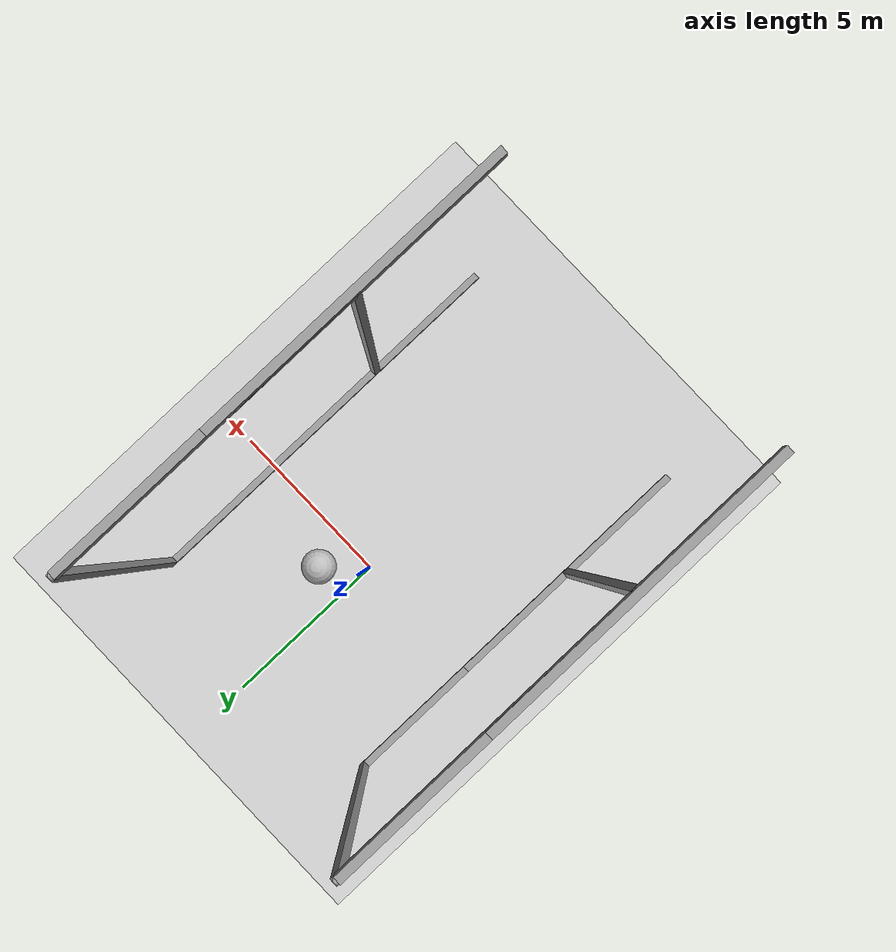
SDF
<?xml version="1.0" ?>
<sdf version="1.5">
<world name="default">
  <include>
    <uri>model://ground_plane</uri>
  </include>
  <include>
    <uri>model://sun</uri>
  </include>

  <!-- Support Columns -->
  <!-- Bottom Corners -->
  <model name="column1">
    <static>true</static>
    <link name="link">
      <collision name="collision">
        <geometry>
          <box>
            <size>0.2 0.2 8</size>
          </box>
        </geometry>
      </collision>
      <visual name="visual">
        <geometry>
          <box>
            <size>0.2 0.2 8</size>
          </box>
        </geometry>
        <material>
          <script>
            <uri>file://media/materials/scripts/gazebo.material</uri>
            <name>Gazebo/Grey</name>
          </script>
        </material>
      </visual>
    </link>
    <pose>4 0 0 1.5708 0 0</pose>
  </model>

  <model name="column2">
    <static>true</static>
    <link name="link">
      <collision name="collision">
        <geometry>
          <box>
            <size>0.2 0.2 8</size>
          </box>
        </geometry>
      </collision>
      <visual name="visual">
        <geometry>
          <box>
            <size>0.2 0.2 8</size>
          </box>
        </geometry>
        <material>
          <script>
            <uri>file://media/materials/scripts/gazebo.material</uri>
            <name>Gazebo/Grey</name>
          </script>
        </material>
      </visual>
    </link>
    <pose>-4 0 0 1.5708 0 0</pose>
  </model>

  <model name="column3">
    <static>true</static>
    <link name="link">
      <collision name="collision">
        <geometry>
          <box>
            <size>0.2 0.2 8</size>
          </box>
        </geometry>
      </collision>
      <visual name="visual">
        <geometry>
          <box>
            <size>0.2 0.2 8</size>
          </box>
        </geometry>
        <material>
          <script>
            <uri>file://media/materials/scripts/gazebo.material</uri>
            <name>Gazebo/Grey</name>
          </script>
        </material>
      </visual>
    </link>
    <pose>4 -4 0 1.5708 0 0</pose>
  </model>

  <model name="column4">
    <static>true</static>
    <link name="link">
      <collision name="collision">
        <geometry>
          <box>
            <size>0.2 0.2 8</size>
          </box>
        </geometry>
      </collision>
      <visual name="visual">
        <geometry>
          <box>
            <size>0.2 0.2 8</size>
          </box>
        </geometry>
        <material>
          <script>
            <uri>file://media/materials/scripts/gazebo.material</uri>
            <name>Gazebo/Grey</name>
          </script>
        </material>
      </visual>
    </link>
    <pose>-4 -4 0 1.5708 0 0</pose>
  </model>

  <!-- Top Corners -->
  <model name="column5">
    <static>true</static>
    <link name="link">
      <collision name="collision">
        <geometry>
          <box>
            <size>0.2 0.2 8</size>
          </box>
        </geometry>
      </collision>
      <visual name="visual">
        <geometry>
          <box>
            <size>0.2 0.2 8</size>
          </box>
        </geometry>
        <material>
          <script>
            <uri>file://media/materials/scripts/gazebo.material</uri>
            <name>Gazebo/Grey</name>
          </script>
        </material>
      </visual>
    </link>
    <pose>4 0 8 1.5708 0 0</pose>
  </model>

  <model name="column6">
    <static>true</static>
    <link name="link">
      <collision name="collision">
        <geometry>
          <box>
            <size>0.2 0.2 8</size>
          </box>
        </geometry>
      </collision>
      <visual name="visual">
        <geometry>
          <box>
            <size>0.2 0.2 8</size>
          </box>
        </geometry>
        <material>
          <script>
            <uri>file://media/materials/scripts/gazebo.material</uri>
            <name>Gazebo/Grey</name>
          </script>
        </material>
      </visual>
    </link>
    <pose>-4 0 8 1.5708 0 0</pose>
  </model>

  <model name="column7">
    <static>true</static>
    <link name="link">
      <collision name="collision">
        <geometry>
          <box>
            <size>0.2 0.2 8</size>
          </box>
        </geometry>
      </collision>
      <visual name="visual">
        <geometry>
          <box>
            <size>0.2 0.2 8</size>
          </box>
        </geometry>
        <material>
          <script>
            <uri>file://media/materials/scripts/gazebo.material</uri>
            <name>Gazebo/Grey</name>
          </script>
        </material>
      </visual>
    </link>
    <pose>4 -4 8 1.5708 0 0</pose>
  </model>

  <model name="column8">
    <static>true</static>
    <link name="link">
      <collision name="collision">
        <geometry>
          <box>
            <size>0.2 0.2 8</size>
          </box>
        </geometry>
      </collision>
      <visual name="visual">
        <geometry>
          <box>
            <size>0.2 0.2 8</size>
          </box>
        </geometry>
        <material>
          <script>
            <uri>file://media/materials/scripts/gazebo.material</uri>
            <name>Gazebo/Grey</name>
          </script>
        </material>
      </visual>
    </link>
    <pose>-4 -4 8 1.5708 0 0</pose>
  </model>

  <!-- Middle Corners -->
  <model name="column9">
    <static>true</static>
    <link name="link">
      <collision name="collision">
        <geometry>
          <box>
            <size>0.2 0.2 8</size>
          </box>
        </geometry>
      </collision>
      <visual name="visual">
        <geometry>
          <box>
            <size>0.2 0.2 8</size>
          </box>
        </geometry>
        <material>
          <script>
            <uri>file://media/materials/scripts/gazebo.material</uri>
            <name>Gazebo/Grey</name>
          </script>
        </material>
      </visual>
    </link>
    <pose>4 4 4 0 0 0</pose>
  </model>

  <model name="column10">
    <static>true</static>
    <link name="link">
      <collision name="collision">
        <geometry>
          <box>
            <size>0.2 0.2 8</size>
          </box>
        </geometry>
      </collision>
      <visual name="visual">
        <geometry>
          <box>
            <size>0.2 0.2 8</size>
          </box>
        </geometry>
        <material>
          <script>
            <uri>file://media/materials/scripts/gazebo.material</uri>
            <name>Gazebo/Grey</name>
          </script>
        </material>
      </visual>
    </link>
    <pose>-4 4 4 0 0 0</pose>
  </model>

  <model name="column11">
    <static>true</static>
    <link name="link">
      <collision name="collision">
        <geometry>
          <box>
            <size>0.2 0.2 8</size>
          </box>
        </geometry>
      </collision>
      <visual name="visual">
        <geometry>
          <box>
            <size>0.2 0.2 8</size>
          </box>
        </geometry>
        <material>
          <script>
            <uri>file://media/materials/scripts/gazebo.material</uri>
            <name>Gazebo/Grey</name>
          </script>
        </material>
      </visual>
    </link>
    <pose>4 -4 4 0 0 0</pose>
  </model>

  <model name="column12">
    <static>true</static>
    <link name="link">
      <collision name="collision">
        <geometry>
          <box>
            <size>0.2 0.2 8</size>
          </box>
        </geometry>
      </collision>
      <visual name="visual">
        <geometry>
          <box>
            <size>0.2 0.2 8</size>
          </box>
        </geometry>
        <material>
          <script>
            <uri>file://media/materials/scripts/gazebo.material</uri>
            <name>Gazebo/Grey</name>
          </script>
        </material>
      </visual>
    </link>
    <pose>-4 -4 4 0 0 0</pose>
  </model>

  <!-- Fixed Points -->
  <model name="fixed_point1">
    <static>true</static>
    <link name="link">
      <collision name="collision">
        <geometry>
          <sphere>
            <radius>0.1</radius>
          </sphere>
        </geometry>
      </collision>
      <visual name="visual">
        <geometry>
          <sphere>
            <radius>0.1</radius>
          </sphere>
        </geometry>
      </visual>
    </link>
    <pose>4 4 8 0 0 0</pose>
  </model>

  <model name="fixed_point2">
    <static>true</static>
    <link name="link">
      <collision name="collision">
        <geometry>
          <sphere>
            <radius>0.1</radius>
          </sphere>
        </geometry>
      </collision>
      <visual name="visual">
        <geometry>
          <sphere>
            <radius>0.1</radius>
          </sphere>
        </geometry>
      </visual>
    </link>
    <pose>-4 4 8 0 0 0</pose>
  </model>

  <model name="fixed_point3">
    <static>true</static>
    <link name="link">
      <collision name="collision">
        <geometry>
          <sphere>
            <radius>0.1</radius>
          </sphere>
        </geometry>
      </collision>
      <visual name="visual">
        <geometry>
          <sphere>
            <radius>0.1</radius>
          </sphere>
        </geometry>
      </visual>
    </link>
    <pose>4 -4 8 0 0 0</pose>
  </model>

  <model name="fixed_point4">
    <static>true</static>
    <link name="link">
      <collision name="collision">
        <geometry>
          <sphere>
            <radius>0.1</radius>
          </sphere>
        </geometry>
      </collision>
      <visual name="visual">
        <geometry>
          <sphere>
            <radius>0.1</radius>
          </sphere>
        </geometry>
      </visual>
    </link>
    <pose>-4 -4 8 0 0 0</pose>
  </model>

  <model name="fixed_point5">
    <static>true</static>
    <link name="link">
      <collision name="collision">
        <geometry>
          <sphere>
            <radius>0.1</radius>
          </sphere>
        </geometry>
      </collision>
      <visual name="visual">
        <geometry>
          <sphere>
            <radius>0.1</radius>
          </sphere>
        </geometry>
      </visual>
    </link>
    <pose>4 4 0 0 0 0</pose>
  </model>

  <model name="fixed_point6">
    <static>true</static>
    <link name="link">
      <collision name="collision">
        <geometry>
          <sphere>
            <radius>0.1</radius>
          </sphere>
        </geometry>
      </collision>
      <visual name="visual">
        <geometry>
          <sphere>
            <radius>0.1</radius>
          </sphere>
        </geometry>
      </visual>
    </link>
    <pose>-4 4 0 0 0 0</pose>
  </model>

  <model name="fixed_point7">
    <static>true</static>
    <link name="link">
      <collision name="collision">
        <geometry>
          <sphere>
            <radius>0.1</radius>
          </sphere>
        </geometry>
      </collision>
      <visual name="visual">
        <geometry>
          <sphere>
            <radius>0.1</radius>
          </sphere>
        </geometry>
      </visual>
    </link>
    <pose>4 -4 0 0 0 0</pose>
  </model>

  <model name="fixed_point8">
    <static>true</static>
    <link name="link">
      <collision name="collision">
        <geometry>
          <sphere>
            <radius>0.1</radius>
          </sphere>
        </geometry>
      </collision>
      <visual name="visual">
        <geometry>
          <sphere>
            <radius>0.1</radius>
          </sphere>
        </geometry>
      </visual>
    </link>
    <pose>-4 -4 0 0 0 0</pose>
  </model>

  <!-- Bouncing Object -->
  <model name="bouncing_object">
    <static>false</static>
    <link name="link">
      <collision name="collision">
        <geometry>
          <sphere>
            <radius>0.5</radius>
          </sphere>
        </geometry>
      </collision>
      <visual name="visual">
        <geometry>
          <sphere>
            <radius>0.5</radius>
          </sphere>
        </geometry>
      </visual>
    </link>
    <pose>1 1 0.5 0 0 0</pose>
    <plugin name="cable_plugin" filename="libcable_plugin.so">
    </plugin>

  </model>

</world>
</sdf>
